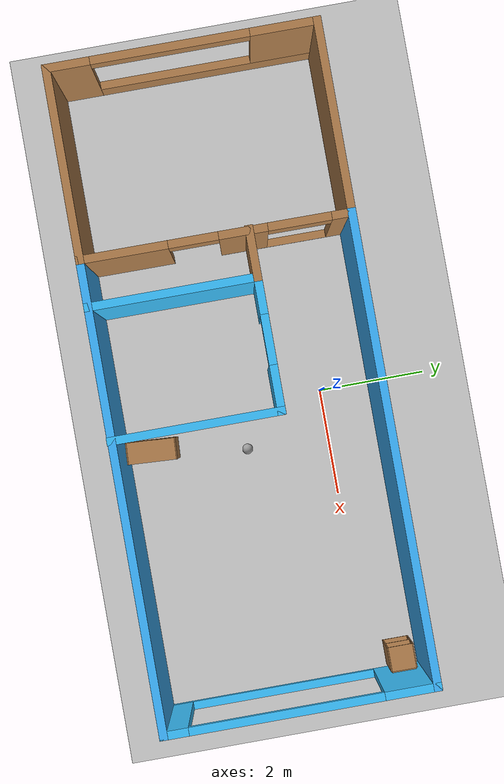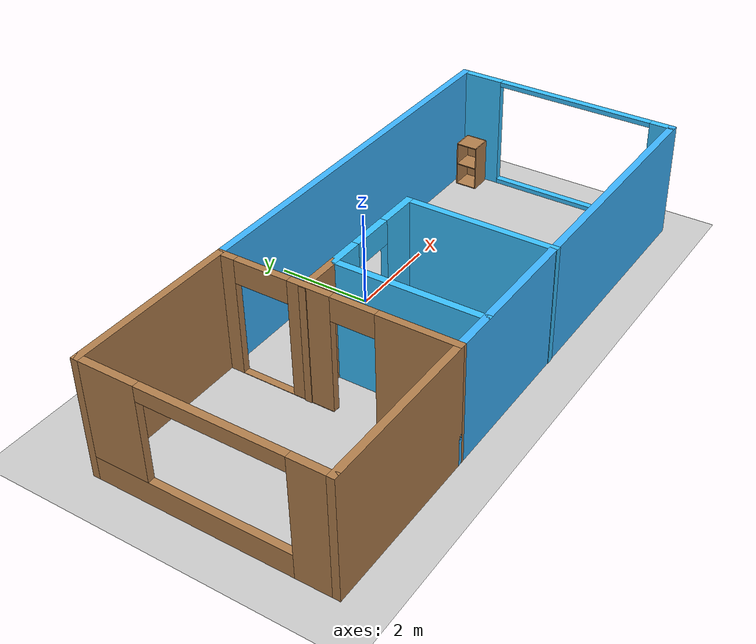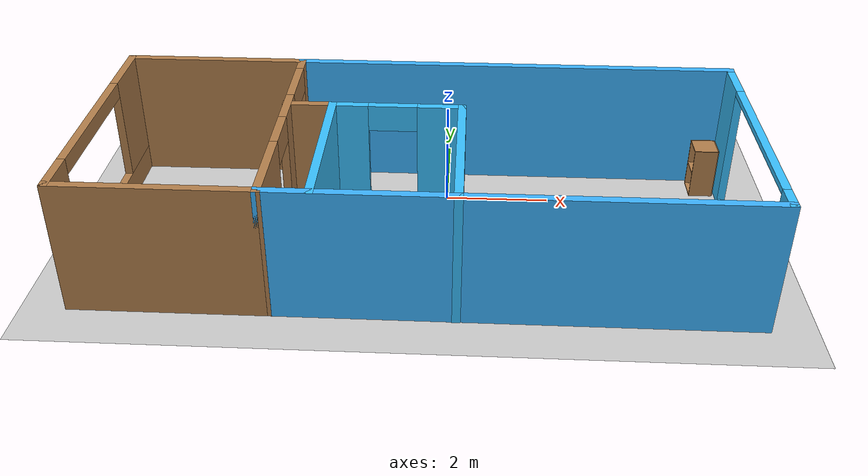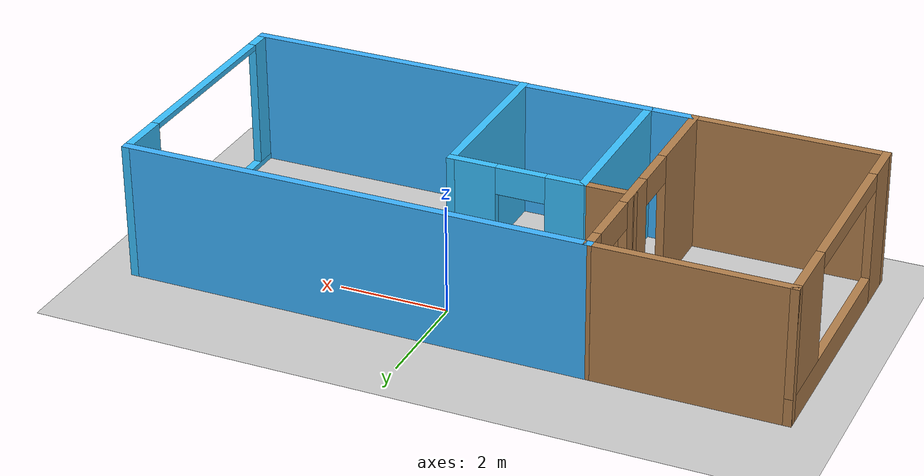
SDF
<sdf version="1.6">
 <world name="default">
  <plugin name="welcome" filename="libwelcome.so"/>
  <light name="sun" type="directional">
   <pose>0 0 10 0 -0 0</pose>
   <diffuse>0.8 0.8 0.8 1</diffuse>
   <specular>0.2 0.2 0.2 1</specular>
   <attenuation>
    <range>1000</range>
    <constant>0.9</constant>
    <linear>0.01</linear>
    <quadratic>0.001</quadratic>
   </attenuation>
   <direction>-0.5 0.1 -0.9</direction>
  </light>
  <model name="ground_plane">
   <static>1</static>
   <link name="link">
    <collision name="collision">
     <geometry><plane><normal>0 0 1</normal><size>100 100</size></plane></geometry>
     <surface><friction><ode><mu>100</mu><mu2>50</mu2></ode></friction></surface>
    </collision>
    <visual name="visual">
     <cast_shadows>0</cast_shadows>
     <geometry><plane><normal>0 0 1</normal><size>100 100</size></plane></geometry>
     <material>
      <script><uri>file://media/materials/scripts/gazebo.material</uri><name>Gazebo/Grey</name></script>
     </material>
    </visual>
   </link>
  </model>
  <gravity>0 0 -9.8</gravity>
  <magnetic_field>6e-06 2.3e-05 -4.2e-05</magnetic_field>
  <atmosphere type="adiabatic"/>
  <physics name="default_physics" default="0" type="ode">
   <max_step_size>0.001</max_step_size>
   <real_time_factor>1</real_time_factor>
   <real_time_update_rate>1000</real_time_update_rate>
  </physics>
  <scene><ambient>0.4 0.4 0.4 1</ambient><background>0.7 0.7 0.7 1</background><shadows>1</shadows></scene>
  <spherical_coordinates>
   <surface_model>EARTH_WGS84</surface_model>
   <latitude_deg>0</latitude_deg>
   <longitude_deg>0</longitude_deg>
   <elevation>0</elevation>
   <heading_deg>0</heading_deg>
  </spherical_coordinates>
  <model name="Building">
   <pose>-0.45581 -1.43484 0 0 -0 0</pose>
   <link name="Wall_1">
    <pose>5.925 0.004925 0 0 0 -1.5708</pose>
    <visual name="Wall_1_Visual_0">
     <pose>-1.9975 0 1.25 0 -0 0</pose>
     <geometry><box><size>1.005 0.15 2.5</size></box></geometry>
     <material>
      <script><uri>file://media/materials/scripts/gazebo.material</uri><name>Gazebo/Grey</name></script>
      <ambient>0.223529 0.756863 1 1</ambient>
     </material>
     <meta><layer>0</layer></meta>
    </visual>
    <collision name="Wall_1_Collision_0">
     <geometry><box><size>1.005 0.15 2.5</size></box></geometry>
     <pose>-1.9975 0 1.25 0 -0 0</pose>
    </collision>
    <visual name="Wall_1_Visual_1">
     <pose>0.5025 0 0.05 0 -0 0</pose>
     <geometry><box><size>3.995 0.15 0.1</size></box></geometry>
     <material>
      <script><uri>file://media/materials/scripts/gazebo.material</uri><name>Gazebo/Grey</name></script>
      <ambient>0.223529 0.756863 1 1</ambient>
     </material>
     <meta><layer>0</layer></meta>
    </visual>
    <collision name="Wall_1_Collision_1">
     <geometry><box><size>3.995 0.15 0.1</size></box></geometry>
     <pose>0.5025 0 0.05 0 -0 0</pose>
    </collision>
    <visual name="Wall_1_Visual_2">
     <pose>2.2375 0 1.3 0 -0 0</pose>
     <geometry><box><size>0.525 0.15 2.4</size></box></geometry>
     <material>
      <script><uri>file://media/materials/scripts/gazebo.material</uri><name>Gazebo/Grey</name></script>
      <ambient>0.223529 0.756863 1 1</ambient>
     </material>
     <meta><layer>0</layer></meta>
    </visual>
    <collision name="Wall_1_Collision_2">
     <geometry><box><size>0.525 0.15 2.4</size></box></geometry>
     <pose>2.2375 0 1.3 0 -0 0</pose>
    </collision>
    <visual name="Wall_1_Visual_3">
     <pose>0.24 0 2.45 0 -0 0</pose>
     <geometry><box><size>3.47 0.15 0.1</size></box></geometry>
     <material>
      <script><uri>file://media/materials/scripts/gazebo.material</uri><name>Gazebo/Grey</name></script>
      <ambient>0.223529 0.756863 1 1</ambient>
     </material>
     <meta><layer>0</layer></meta>
    </visual>
    <collision name="Wall_1_Collision_3">
     <geometry><box><size>3.47 0.15 0.1</size></box></geometry>
     <pose>0.24 0 2.45 0 -0 0</pose>
    </collision>
   </link>
   <link name="Wall_12">
    <collision name="Wall_12_Collision">
     <geometry><box><size>3.18 0.15 2.5</size></box></geometry>
     <pose>0 0 1.25 0 -0 0</pose>
    </collision>
    <visual name="Wall_12_Visual">
     <pose>0 0 1.25 0 -0 0</pose>
     <geometry><box><size>3.18 0.15 2.5</size></box></geometry>
     <material>
      <script><uri>file://media/materials/scripts/gazebo.material</uri><name>Gazebo/Grey</name></script>
      <ambient>0.223529 0.756863 1 1</ambient>
     </material>
     <meta><layer>0</layer></meta>
    </visual>
    <pose>0.725002 -0.915074 0 0 -0 1.5708</pose>
   </link>
   <link name="Wall_13">
    <pose>-0.449998 0.599925 0 0 -0 3.14159</pose>
    <visual name="Wall_13_Visual_0">
     <pose>-0.8025 0 1.25 0 -0 0</pose>
     <geometry><box><size>0.895 0.15 2.5</size></box></geometry>
     <material>
      <script><uri>file://media/materials/scripts/gazebo.material</uri><name>Gazebo/Grey</name></script>
      <ambient>0.223529 0.756863 1 1</ambient>
     </material>
     <meta><layer>0</layer></meta>
    </visual>
    <collision name="Wall_13_Collision_0">
     <geometry><box><size>0.895 0.15 2.5</size></box></geometry>
     <pose>-0.8025 0 1.25 0 -0 0</pose>
    </collision>
    <visual name="Wall_13_Visual_1">
     <pose>0.8975 0 1.25 0 -0 0</pose>
     <geometry><box><size>0.705 0.15 2.5</size></box></geometry>
     <material>
      <script><uri>file://media/materials/scripts/gazebo.material</uri><name>Gazebo/Grey</name></script>
      <ambient>0.223529 0.756863 1 1</ambient>
     </material>
     <meta><layer>0</layer></meta>
    </visual>
    <collision name="Wall_13_Collision_1">
     <geometry><box><size>0.705 0.15 2.5</size></box></geometry>
     <pose>0.8975 0 1.25 0 -0 0</pose>
    </collision>
    <visual name="Wall_13_Visual_2">
     <pose>0.095 0 2.25 0 -0 0</pose>
     <geometry><box><size>0.9 0.15 0.5</size></box></geometry>
     <material>
      <script><uri>file://media/materials/scripts/gazebo.material</uri><name>Gazebo/Grey</name></script>
      <ambient>0.223529 0.756863 1 1</ambient>
     </material>
     <meta><layer>0</layer></meta>
    </visual>
    <collision name="Wall_13_Collision_2">
     <geometry><box><size>0.9 0.15 0.5</size></box></geometry>
     <pose>0.095 0 2.25 0 -0 0</pose>
    </collision>
   </link>
   <link name="Wall_15">
    <collision name="Wall_15_Collision">
     <geometry><box><size>3.59002 0.15 2.5</size></box></geometry>
     <pose>0 0 1.25 0 -0 0</pose>
    </collision>
    <visual name="Wall_15_Visual">
     <pose>0 0 1.25 0 -0 0</pose>
     <geometry><box><size>3.59002 0.15 2.5</size></box></geometry>
     <material>
      <script><uri>file://media/materials/scripts/gazebo.material</uri><name>Gazebo/Wood</name></script>
      <ambient>1 1 1 1</ambient>
     </material>
     <meta><layer>0</layer></meta>
    </visual>
    <pose>-4.205 2.42992 0 0 -0 0</pose>
   </link>
   <link name="Wall_17">
    <collision name="Wall_17_Collision">
     <geometry><box><size>8.56001 0.15 2.5</size></box></geometry>
     <pose>0 0 1.25 0 -0 0</pose>
    </collision>
    <visual name="Wall_17_Visual">
     <pose>0 0 1.25 0 -0 0</pose>
     <geometry><box><size>8.56001 0.15 2.5</size></box></geometry>
     <material>
      <script><uri>file://media/materials/scripts/gazebo.material</uri><name>Gazebo/Grey</name></script>
      <ambient>0.235294 0.705882 1 1</ambient>
     </material>
     <meta><layer>0</layer></meta>
    </visual>
    <pose>1.72 2.42992 0 0 -0 0</pose>
   </link>
   <link name="Wall_19">
    <collision name="Wall_19_Collision">
     <geometry><box><size>3.58001 0.15 2.5</size></box></geometry>
     <pose>0 0 1.25 0 -0 0</pose>
    </collision>
    <visual name="Wall_19_Visual">
     <pose>0 0 1.25 0 -0 0</pose>
     <geometry><box><size>3.58001 0.15 2.5</size></box></geometry>
     <material>
      <script><uri>file://media/materials/scripts/gazebo.material</uri><name>Gazebo/Wood</name></script>
      <ambient>1 1 1 1</ambient>
     </material>
     <meta><layer>0</layer></meta>
    </visual>
    <pose>-4.21 -2.42008 0 0 -0 0</pose>
   </link>
   <link name="Wall_21">
    <collision name="Wall_21_Collision">
     <geometry><box><size>8.57001 0.15 2.5</size></box></geometry>
     <pose>0 0 1.25 0 -0 0</pose>
    </collision>
    <visual name="Wall_21_Visual">
     <pose>0 0 1.25 0 -0 0</pose>
     <geometry><box><size>8.57001 0.15 2.5</size></box></geometry>
     <material>
      <script><uri>file://media/materials/scripts/gazebo.material</uri><name>Gazebo/Grey</name></script>
      <ambient>0.235294 0.705882 1 1</ambient>
     </material>
     <meta><layer>0</layer></meta>
    </visual>
    <pose>1.715 -2.42008 0 0 -0 0</pose>
   </link>
   <link name="Wall_3">
    <pose>-5.925 0.004925 0 0 -0 1.5708</pose>
    <visual name="Wall_3_Visual_0">
     <pose>-2.0725 0 1.25 0 -0 0</pose>
     <geometry><box><size>0.855 0.15 2.5</size></box></geometry>
     <material>
      <script><uri>file://media/materials/scripts/gazebo.material</uri><name>Gazebo/Wood</name></script>
      <ambient>1 1 1 1</ambient>
     </material>
     <meta><layer>0</layer></meta>
    </visual>
    <collision name="Wall_3_Collision_0">
     <geometry><box><size>0.855 0.15 2.5</size></box></geometry>
     <pose>-2.0725 0 1.25 0 -0 0</pose>
    </collision>
    <visual name="Wall_3_Visual_1">
     <pose>0.4275 0 0.25 0 -0 0</pose>
     <geometry><box><size>4.145 0.15 0.5</size></box></geometry>
     <material>
      <script><uri>file://media/materials/scripts/gazebo.material</uri><name>Gazebo/Wood</name></script>
      <ambient>1 1 1 1</ambient>
     </material>
     <meta><layer>0</layer></meta>
    </visual>
    <collision name="Wall_3_Collision_1">
     <geometry><box><size>4.145 0.15 0.5</size></box></geometry>
     <pose>0.4275 0 0.25 0 -0 0</pose>
    </collision>
    <visual name="Wall_3_Visual_2">
     <pose>1.8575 0 1.5 0 -0 0</pose>
     <geometry><box><size>1.285 0.15 2</size></box></geometry>
     <material>
      <script><uri>file://media/materials/scripts/gazebo.material</uri><name>Gazebo/Wood</name></script>
      <ambient>1 1 1 1</ambient>
     </material>
     <meta><layer>0</layer></meta>
    </visual>
    <collision name="Wall_3_Collision_2">
     <geometry><box><size>1.285 0.15 2</size></box></geometry>
     <pose>1.8575 0 1.5 0 -0 0</pose>
    </collision>
    <visual name="Wall_3_Visual_3">
     <pose>-0.215 0 2.35 0 -0 0</pose>
     <geometry><box><size>2.86 0.15 0.3</size></box></geometry>
     <material>
      <script><uri>file://media/materials/scripts/gazebo.material</uri><name>Gazebo/Wood</name></script>
      <ambient>1 1 1 1</ambient>
     </material>
     <meta><layer>0</layer></meta>
    </visual>
    <collision name="Wall_3_Collision_3">
     <geometry><box><size>2.86 0.15 0.3</size></box></geometry>
     <pose>-0.215 0 2.35 0 -0 0</pose>
    </collision>
   </link>
   <link name="Wall_5">
    <pose>-2.49 0.004925 0 0 0 -1.57286</pose>
    <visual name="Wall_5_Visual_0">
     <pose>-2.2825 0 1.25 0 -0 0</pose>
     <geometry><box><size>0.434997 0.15 2.5</size></box></geometry>
     <material>
      <script><uri>file://media/materials/scripts/gazebo.material</uri><name>Gazebo/Wood</name></script>
      <ambient>1 1 1 1</ambient>
     </material>
     <meta><layer>0</layer></meta>
    </visual>
    <collision name="Wall_5_Collision_0">
     <geometry><box><size>0.434997 0.15 2.5</size></box></geometry>
     <pose>-2.2825 0 1.25 0 -0 0</pose>
    </collision>
    <visual name="Wall_5_Visual_1">
     <pose>1.6775 0 1.25 0 -0 0</pose>
     <geometry><box><size>1.645 0.15 2.5</size></box></geometry>
     <material>
      <script><uri>file://media/materials/scripts/gazebo.material</uri><name>Gazebo/Wood</name></script>
      <ambient>1 1 1 1</ambient>
     </material>
     <meta><layer>0</layer></meta>
    </visual>
    <collision name="Wall_5_Collision_1">
     <geometry><box><size>1.645 0.15 2.5</size></box></geometry>
     <pose>1.6775 0 1.25 0 -0 0</pose>
    </collision>
    <visual name="Wall_5_Visual_2">
     <pose>-1.055 0 0.005 0 -0 0</pose>
     <geometry><box><size>2.02 0.15 0.01</size></box></geometry>
     <material>
      <script><uri>file://media/materials/scripts/gazebo.material</uri><name>Gazebo/Wood</name></script>
      <ambient>1 1 1 1</ambient>
     </material>
     <meta><layer>0</layer></meta>
    </visual>
    <collision name="Wall_5_Collision_2">
     <geometry><box><size>2.02 0.15 0.01</size></box></geometry>
     <pose>-1.055 0 0.005 0 -0 0</pose>
    </collision>
    <visual name="Wall_5_Visual_3">
     <pose>-0.485001 0 1.255 0 -0 0</pose>
     <geometry><box><size>0.880004 0.15 2.49</size></box></geometry>
     <material>
      <script><uri>file://media/materials/scripts/gazebo.material</uri><name>Gazebo/Wood</name></script>
      <ambient>1 1 1 1</ambient>
     </material>
     <meta><layer>0</layer></meta>
    </visual>
    <collision name="Wall_5_Collision_3">
     <geometry><box><size>0.880004 0.15 2.49</size></box></geometry>
     <pose>-0.485001 0 1.255 0 -0 0</pose>
    </collision>
    <visual name="Wall_5_Visual_4">
     <pose>0.405001 0 2.25 0 -0 0</pose>
     <geometry><box><size>0.9 0.15 0.5</size></box></geometry>
     <material>
      <script><uri>file://media/materials/scripts/gazebo.material</uri><name>Gazebo/Wood</name></script>
      <ambient>1 1 1 1</ambient>
     </material>
     <meta><layer>0</layer></meta>
    </visual>
    <collision name="Wall_5_Collision_4">
     <geometry><box><size>0.9 0.15 0.5</size></box></geometry>
     <pose>0.405001 0 2.25 0 -0 0</pose>
    </collision>
    <visual name="Wall_5_Visual_5">
     <pose>-1.495 0 2.255 0 -0 0</pose>
     <geometry><box><size>1.14 0.15 0.49</size></box></geometry>
     <material>
      <script><uri>file://media/materials/scripts/gazebo.material</uri><name>Gazebo/Wood</name></script>
      <ambient>1 1 1 1</ambient>
     </material>
     <meta><layer>0</layer></meta>
    </visual>
    <collision name="Wall_5_Collision_5">
     <geometry><box><size>1.14 0.15 0.49</size></box></geometry>
     <pose>-1.495 0 2.255 0 -0 0</pose>
    </collision>
   </link>
   <link name="Wall_7">
    <collision name="Wall_7_Collision">
     <geometry><box><size>1 0.15 2.5</size></box></geometry>
     <pose>0 0 1.25 0 -0 0</pose>
    </collision>
    <visual name="Wall_7_Visual">
     <pose>0 0 1.25 0 -0 0</pose>
     <geometry><box><size>1 0.15 2.5</size></box></geometry>
     <material>
      <script><uri>file://media/materials/scripts/gazebo.material</uri><name>Gazebo/Wood</name></script>
      <ambient>1 1 1 1</ambient>
     </material>
     <meta><layer>0</layer></meta>
    </visual>
    <pose>-2.08 0.599925 0 0 -0 0</pose>
   </link>
   <link name="Wall_8">
    <collision name="Wall_8_Collision">
     <geometry><box><size>3.17 0.15 2.5</size></box></geometry>
     <pose>0 0 1.25 0 -0 0</pose>
    </collision>
    <visual name="Wall_8_Visual">
     <pose>0 0 1.25 0 -0 0</pose>
     <geometry><box><size>3.17 0.15 2.5</size></box></geometry>
     <material>
      <script><uri>file://media/materials/scripts/gazebo.material</uri><name>Gazebo/Grey</name></script>
      <ambient>0.223529 0.756863 1 1</ambient>
     </material>
     <meta><layer>0</layer></meta>
    </visual>
    <pose>-1.655 -0.910075 0 0 0 -1.5708</pose>
   </link>
   <static>1</static>
  </model>
  <model name="bookshelf">
   <static>1</static>
   <link name="link">
    <inertial><mass>1</mass></inertial>
    <collision name="back">
     <pose>0 0.005 0.6 0 -0 0</pose>
     <geometry><box><size>0.9 0.01 1.2</size></box></geometry>
    </collision>
    <visual name="visual1">
     <pose>0 0.005 0.6 0 -0 0</pose>
     <geometry><box><size>0.9 0.01 1.2</size></box></geometry>
     <material>
      <script><uri>file://media/materials/scripts/gazebo.material</uri><name>Gazebo/Wood</name></script>
     </material>
    </visual>
    <collision name="left_side">
     <pose>0.45 -0.195 0.6 0 -0 0</pose>
     <geometry><box><size>0.02 0.4 1.2</size></box></geometry>
    </collision>
    <visual name="visual2">
     <pose>0.45 -0.195 0.6 0 -0 0</pose>
     <geometry><box><size>0.02 0.4 1.2</size></box></geometry>
     <material>
      <script><uri>file://media/materials/scripts/gazebo.material</uri><name>Gazebo/Wood</name></script>
     </material>
    </visual>
    <collision name="right_side">
     <pose>-0.45 -0.195 0.6 0 -0 0</pose>
     <geometry><box><size>0.02 0.4 1.2</size></box></geometry>
    </collision>
    <visual name="visual3">
     <pose>-0.45 -0.195 0.6 0 -0 0</pose>
     <geometry><box><size>0.02 0.4 1.2</size></box></geometry>
     <material>
      <script><uri>file://media/materials/scripts/gazebo.material</uri><name>Gazebo/Wood</name></script>
     </material>
    </visual>
    <collision name="bottom">
     <pose>0 -0.195 0.03 0 -0 0</pose>
     <geometry><box><size>0.88 0.4 0.06</size></box></geometry>
    </collision>
    <visual name="visual4">
     <pose>0 -0.195 0.03 0 -0 0</pose>
     <geometry><box><size>0.88 0.4 0.06</size></box></geometry>
     <material>
      <script><uri>file://media/materials/scripts/gazebo.material</uri><name>Gazebo/Wood</name></script>
     </material>
    </visual>
    <collision name="top">
     <pose>0 -0.195 1.19 0 -0 0</pose>
     <geometry><box><size>0.88 0.4 0.02</size></box></geometry>
    </collision>
    <visual name="visual5">
     <pose>0 -0.195 1.19 0 -0 0</pose>
     <geometry><box><size>0.88 0.4 0.02</size></box></geometry>
     <material>
      <script><uri>file://media/materials/scripts/gazebo.material</uri><name>Gazebo/Wood</name></script>
     </material>
    </visual>
    <collision name="low_shelf">
     <pose>0 -0.195 0.43 0 -0 0</pose>
     <geometry><box><size>0.88 0.4 0.02</size></box></geometry>
    </collision>
    <visual name="visual6">
     <pose>0 -0.195 0.43 0 -0 0</pose>
     <geometry><box><size>0.88 0.4 0.02</size></box></geometry>
     <material>
      <script><uri>file://media/materials/scripts/gazebo.material</uri><name>Gazebo/Wood</name></script>
     </material>
    </visual>
    <collision name="high_shelf">
     <pose>0 -0.195 0.8 0 -0 0</pose>
     <geometry><box><size>0.88 0.4 0.02</size></box></geometry>
    </collision>
    <visual name="visual7">
     <pose>0 -0.195 0.8 0 -0 0</pose>
     <geometry><box><size>0.88 0.4 0.02</size></box></geometry>
     <material>
      <script><uri>file://media/materials/scripts/gazebo.material</uri><name>Gazebo/Wood</name></script>
     </material>
    </visual>
   </link>
   <pose>0.378563 -3.27674 0 0 -0 1.51478</pose>
  </model>
  <audio><device>default</device></audio>
  <model name="my_ball">
   <link name="link_1">
    <inertial>
     <mass>1</mass>
     <inertia><ixx>0.1</ixx><ixy>0</ixy><ixz>0</ixz><iyy>0.1</iyy><iyz>0</iyz><izz>0.1</izz></inertia>
    </inertial>
    <visual name="visual">
     <geometry><sphere><radius>0.1</radius></sphere></geometry>
     <material>
      <lighting>1</lighting>
      <script><uri>file://media/materials/scripts/gazebo.material</uri><name>Gazebo/Grey</name></script>
      <shader type="vertex"><normal_map>__default__</normal_map></shader>
      <ambient>1 1 1 1</ambient>
      <diffuse>1 1 1 1</diffuse>
      <specular>1 1 1 1</specular>
      <emissive>1 1 1 1</emissive>
     </material>
    </visual>
    <collision name="collision">
     <geometry><sphere><radius>0.1</radius></sphere></geometry>
     <surface>
      <friction>
       <ode><mu>1</mu><mu2>1</mu2><fdir1>0 0 0</fdir1><slip1>0</slip1><slip2>0</slip2></ode>
       <torsional>
        <coefficient>1</coefficient>
        <patch_radius>0</patch_radius>
        <surface_radius>0</surface_radius>
        <use_patch_radius>1</use_patch_radius>
        <ode><slip>0</slip></ode>
       </torsional>
      </friction>
      <bounce><restitution_coefficient>0</restitution_coefficient><threshold>1e+06</threshold></bounce>
      <contact>
       <collide_without_contact>0</collide_without_contact>
       <collide_without_contact_bitmask>1</collide_without_contact_bitmask>
       <collide_bitmask>1</collide_bitmask>
       <ode>
        <soft_cfm>0</soft_cfm>
        <soft_erp>0.2</soft_erp>
        <kp>1e+13</kp>
        <kd>1</kd>
        <max_vel>0.01</max_vel>
        <min_depth>0</min_depth>
       </ode>
       <bullet>
        <split_impulse>1</split_impulse>
        <split_impulse_penetration_threshold>-0.01</split_impulse_penetration_threshold>
        <soft_cfm>0</soft_cfm>
        <soft_erp>0.2</soft_erp>
        <kp>1e+13</kp>
        <kd>1</kd>
       </bullet>
      </contact>
     </surface>
    </collision>
   </link>
   <static>0</static>
   <pose>0.863014 -1.54671 0.1 0 -0 0</pose>
  </model>
  <model name="cabinet">
   <static>1</static>
   <link name="cabinet_bottom_plate">
    <inertial>
     <pose>0 0 -1 0 -0 0</pose>
     <inertia><ixx>2.05</ixx><ixy>0</ixy><ixz>0</ixz><iyy>2.05</iyy><iyz>0</iyz><izz>2.05</izz></inertia>
     <mass>25</mass>
    </inertial>
    <collision name="cabinet_bottom_plate_geom">
     <pose>0 0 0.01 0 -0 0</pose>
     <geometry><box><size>0.45 0.45 0.02</size></box></geometry>
    </collision>
    <visual name="cabinet_bottom_plate_geom_visual">
     <pose>0 0 0.01 0 -0 0</pose>
     <geometry><box><size>0.45 0.45 0.02</size></box></geometry>
     <material>
      <script><uri>file://media/materials/scripts/gazebo.material</uri><name>Gazebo/Wood</name></script>
     </material>
    </visual>
    <collision name="cabinet_bottom_plate_geom_cabinet_back_plate">
     <pose>0.235 0 0.51 0 -0 0</pose>
     <geometry><box><size>0.02 0.45 1.02</size></box></geometry>
    </collision>
    <visual name="cabinet_bottom_plate_geom_cabinet_back_plate_visual">
     <pose>0.235 0 0.51 0 -0 0</pose>
     <geometry><box><size>0.02 0.45 1.02</size></box></geometry>
     <material>
      <script><uri>file://media/materials/scripts/gazebo.material</uri><name>Gazebo/Wood</name></script>
     </material>
    </visual>
    <collision name="cabinet_bottom_plate_geom_cabinet_left_plate">
     <pose>0 0.235 0.51 0 -0 0</pose>
     <geometry><box><size>0.45 0.02 1.02</size></box></geometry>
    </collision>
    <visual name="cabinet_bottom_plate_geom_cabinet_left_plate_visual">
     <pose>0 0.235 0.51 0 -0 0</pose>
     <geometry><box><size>0.45 0.02 1.02</size></box></geometry>
     <material>
      <script><uri>file://media/materials/scripts/gazebo.material</uri><name>Gazebo/Wood</name></script>
     </material>
    </visual>
    <collision name="cabinet_bottom_plate_geom_cabinet_middle_plate">
     <pose>0 0 0.51 0 -0 0</pose>
     <geometry><box><size>0.45 0.45 0.02</size></box></geometry>
    </collision>
    <visual name="cabinet_bottom_plate_geom_cabinet_middle_plate_visual">
     <pose>0 0 0.51 0 -0 0</pose>
     <geometry><box><size>0.45 0.45 0.02</size></box></geometry>
     <material>
      <script><uri>file://media/materials/scripts/gazebo.material</uri><name>Gazebo/Wood</name></script>
     </material>
    </visual>
    <collision name="cabinet_bottom_plate_geom_cabinet_right_plate">
     <pose>0 -0.235 0.51 0 -0 0</pose>
     <geometry><box><size>0.45 0.02 1.02</size></box></geometry>
    </collision>
    <visual name="cabinet_bottom_plate_geom_cabinet_right_plate_visual">
     <pose>0 -0.235 0.51 0 -0 0</pose>
     <geometry><box><size>0.45 0.02 1.02</size></box></geometry>
     <material>
      <script><uri>file://media/materials/scripts/gazebo.material</uri><name>Gazebo/Wood</name></script>
     </material>
    </visual>
    <collision name="cabinet_bottom_plate_geom_cabinet_top_plate">
     <pose>0 0 1.01 0 -0 0</pose>
     <geometry><box><size>0.45 0.45 0.02</size></box></geometry>
    </collision>
    <visual name="cabinet_bottom_plate_geom_cabinet_top_plate_visual">
     <pose>0 0 1.01 0 -0 0</pose>
     <geometry><box><size>0.45 0.45 0.02</size></box></geometry>
     <material>
      <script><uri>file://media/materials/scripts/gazebo.material</uri><name>Gazebo/Wood</name></script>
     </material>
    </visual>
   </link>
   <pose>5.11396 0.578957 0 0 -0 0</pose>
  </model>
 </world>
</sdf>
